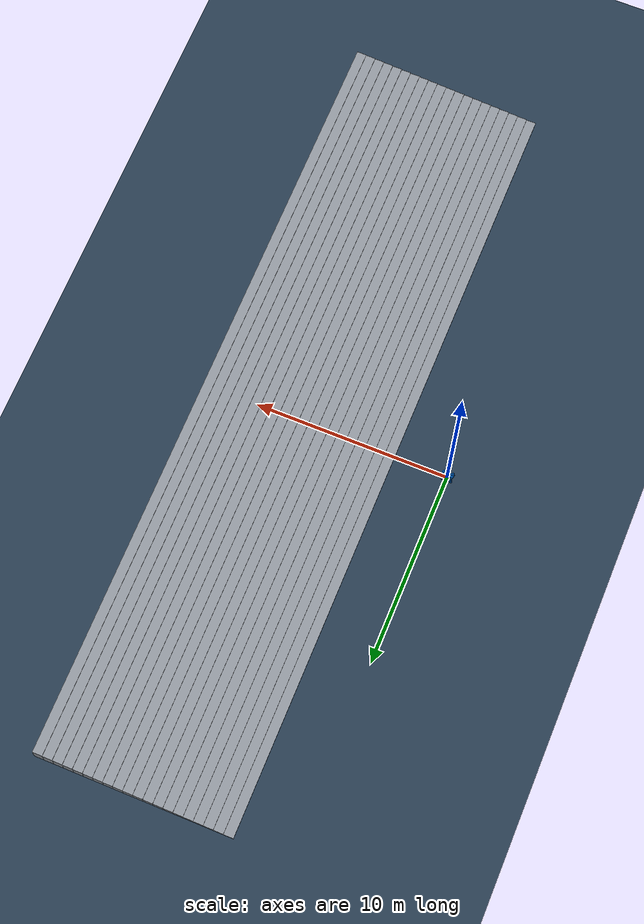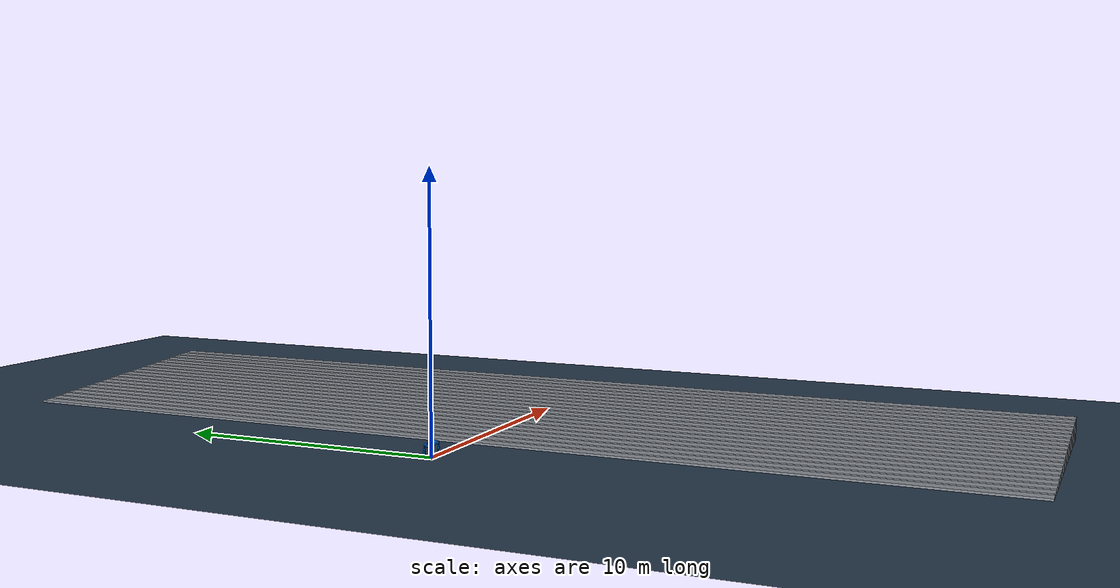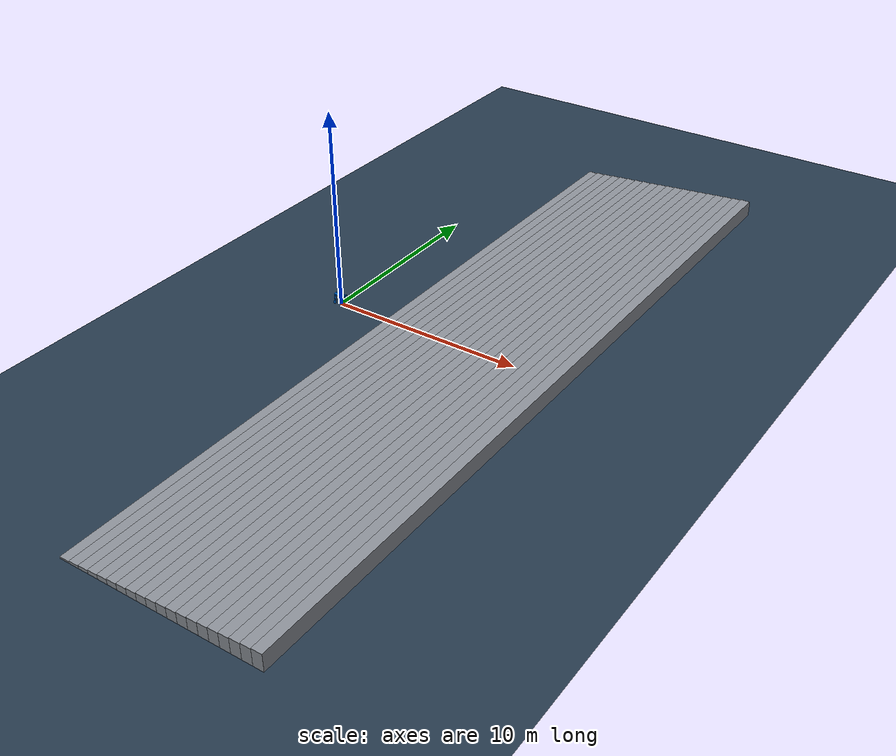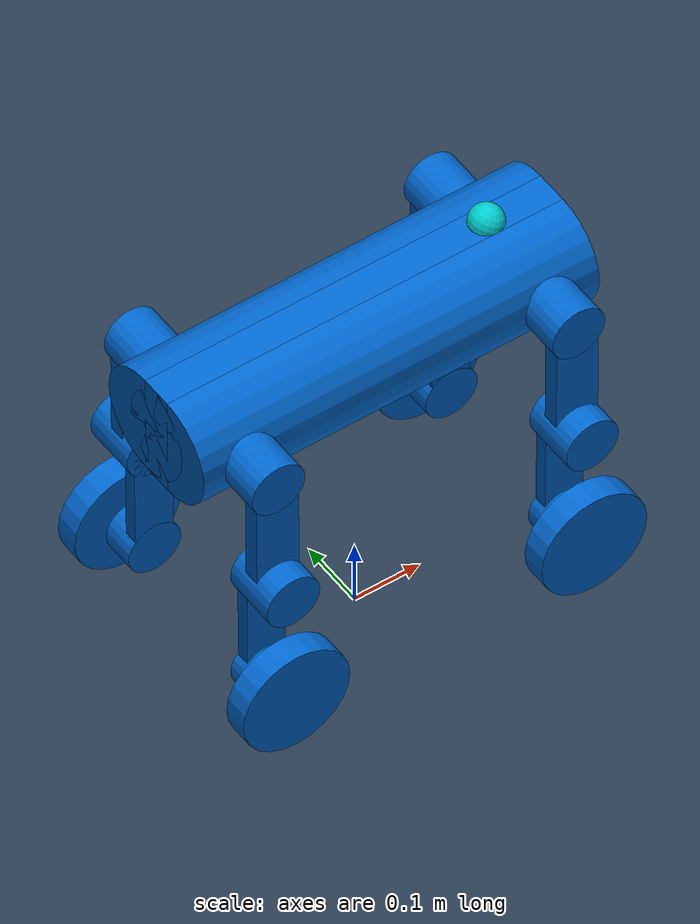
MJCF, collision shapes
<!-- 由 gen_box_scenes.py 生成，勿手改。box 几何，与评测场景同一种碰撞表示。 -->
<mujoco model="slope_8">
    <include file="./S10.xml"/>
    <worldbody>
        <geom name="r0" type="box" pos="3.0000 0.0000 -0.5800" size="0.2500 20.0000 0.6200" rgba="0.55 0.57 0.60 1" friction="1 0.01 0.001" condim="3"/>
        <geom name="r1" type="box" pos="3.5000 0.0000 -0.5600" size="0.2500 20.0000 0.6400" rgba="0.55 0.57 0.60 1" friction="1 0.01 0.001" condim="3"/>
        <geom name="r2" type="box" pos="4.0000 0.0000 -0.5400" size="0.2500 20.0000 0.6600" rgba="0.55 0.57 0.60 1" friction="1 0.01 0.001" condim="3"/>
        <geom name="r3" type="box" pos="4.5000 0.0000 -0.5200" size="0.2500 20.0000 0.6800" rgba="0.55 0.57 0.60 1" friction="1 0.01 0.001" condim="3"/>
        <geom name="r4" type="box" pos="5.0000 0.0000 -0.5000" size="0.2500 20.0000 0.7000" rgba="0.55 0.57 0.60 1" friction="1 0.01 0.001" condim="3"/>
        <geom name="r5" type="box" pos="5.5000 0.0000 -0.4800" size="0.2500 20.0000 0.7200" rgba="0.55 0.57 0.60 1" friction="1 0.01 0.001" condim="3"/>
        <geom name="r6" type="box" pos="6.0000 0.0000 -0.4600" size="0.2500 20.0000 0.7400" rgba="0.55 0.57 0.60 1" friction="1 0.01 0.001" condim="3"/>
        <geom name="r7" type="box" pos="6.5000 0.0000 -0.4400" size="0.2500 20.0000 0.7600" rgba="0.55 0.57 0.60 1" friction="1 0.01 0.001" condim="3"/>
        <geom name="r8" type="box" pos="7.0000 0.0000 -0.4200" size="0.2500 20.0000 0.7800" rgba="0.55 0.57 0.60 1" friction="1 0.01 0.001" condim="3"/>
        <geom name="r9" type="box" pos="7.5000 0.0000 -0.4000" size="0.2500 20.0000 0.8000" rgba="0.55 0.57 0.60 1" friction="1 0.01 0.001" condim="3"/>
        <geom name="r10" type="box" pos="8.0000 0.0000 -0.3800" size="0.2500 20.0000 0.8200" rgba="0.55 0.57 0.60 1" friction="1 0.01 0.001" condim="3"/>
        <geom name="r11" type="box" pos="8.5000 0.0000 -0.3600" size="0.2500 20.0000 0.8400" rgba="0.55 0.57 0.60 1" friction="1 0.01 0.001" condim="3"/>
        <geom name="r12" type="box" pos="9.0000 0.0000 -0.3400" size="0.2500 20.0000 0.8600" rgba="0.55 0.57 0.60 1" friction="1 0.01 0.001" condim="3"/>
        <geom name="r13" type="box" pos="9.5000 0.0000 -0.3200" size="0.2500 20.0000 0.8800" rgba="0.55 0.57 0.60 1" friction="1 0.01 0.001" condim="3"/>
        <geom name="r14" type="box" pos="10.0000 0.0000 -0.3000" size="0.2500 20.0000 0.9000" rgba="0.55 0.57 0.60 1" friction="1 0.01 0.001" condim="3"/>
        <geom name="r15" type="box" pos="10.5000 0.0000 -0.2800" size="0.2500 20.0000 0.9200" rgba="0.55 0.57 0.60 1" friction="1 0.01 0.001" condim="3"/>
        <geom name="r16" type="box" pos="11.0000 0.0000 -0.2600" size="0.2500 20.0000 0.9400" rgba="0.55 0.57 0.60 1" friction="1 0.01 0.001" condim="3"/>
        <geom name="r17" type="box" pos="11.5000 0.0000 -0.2400" size="0.2500 20.0000 0.9600" rgba="0.55 0.57 0.60 1" friction="1 0.01 0.001" condim="3"/>
        <geom name="r18" type="box" pos="12.0000 0.0000 -0.2200" size="0.2500 20.0000 0.9800" rgba="0.55 0.57 0.60 1" friction="1 0.01 0.001" condim="3"/>
        <geom name="r19" type="box" pos="12.5000 0.0000 -0.2000" size="0.2500 20.0000 1.0000" rgba="0.55 0.57 0.60 1" friction="1 0.01 0.001" condim="3"/>
    </worldbody>
</mujoco>

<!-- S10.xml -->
<mujoco model="S10">
  <default>
      <default class="robot">
          <default class="motor">
              <joint/>
              <motor/>
          </default>
          <default class="visual">
              <geom material="default_material" contype="0" conaffinity="0" group="2"/>
          </default>
          <default class="collision">
              <geom material="collision_material" condim="3" contype="1" conaffinity="1" solref="0.005 1"
                    friction="1 0.01 0.001" density="0" group="1"/>
          </default>
      </default>
  </default>

  <compiler angle="radian" meshdir="../meshes/"/>
  <compiler autolimits="true"/>

  <asset>
    <material name="default_material" rgba="0.7 0.7 0.7 1"/>
    <material name="collision_material" rgba="0.0 0.4 0.8 0.2"/>
    <mesh name="base_link" file="base_link.STL"/>
    <mesh name="fl_hipx" file="fl_hipx.STL"/>
    <mesh name="fl_hipy" file="fl_hipy.STL"/>
    <mesh name="fl_knee" file="fl_knee.STL"/>
    <mesh name="fl_wheel" file="fl_wheel.STL"/>
    <mesh name="fr_hipx" file="fr_hipx.STL"/>
    <mesh name="fr_hipy" file="fr_hipy.STL"/>
    <mesh name="fr_knee" file="fr_knee.STL"/>
    <mesh name="fr_wheel" file="fr_wheel.STL"/>
    <mesh name="hl_hipx" file="hl_hipx.STL"/>
    <mesh name="hl_hipy" file="hl_hipy.STL"/>
    <mesh name="hl_knee" file="hl_knee.STL"/>
    <mesh name="hl_wheel" file="hl_wheel.STL"/>
    <mesh name="hr_hipx" file="hr_hipx.STL"/>
    <mesh name="hr_hipy" file="hr_hipy.STL"/>
    <mesh name="hr_knee" file="hr_knee.STL"/>
    <mesh name="hr_wheel" file="hr_wheel.STL"/>
    <texture name="texplane" type="2d" builtin="checker" rgb1=".2 .3 .4" rgb2=".1 0.15 0.2"
              width="512" height="512"/>
    <material name='MatPlane' reflectance='0.3' texture="texplane" texrepeat="1 1" texuniform="true"/>
  </asset>

  <worldbody>
    <!-- 灯光 -->
    <light directional="true" pos="-0.5 0.5 3" dir="0 0 -1"/>
    <geom name='floor' pos='0 0 0' size='100 100 .125' type='plane' material="MatPlane" condim='3'
          friction="1 0.01 0.01" group="0"/>

    <body name="base_link" pos="0 0.0 0.5" quat="1 0 0 0" childclass="robot">
      <freejoint name="floating_base"/>
      <inertial pos="-0.000512 0.057317 0.001182"
                quat="1 0 0 0"
                mass="8.023087" diaginertia="0.115559 0.171329 0.262028"/>
        <site name="imu_site" pos="0.0075 -0.0373 0.0556" size="0.005" rgba="1 0 0 1"/>
        <site name="base_site" pos="0 0 0" quat="1 0 0 0"/>
        <body name="front_lidar_link" pos="0.2 0 0.08" euler="0 0.436332313 0">
          <site name="front_lidar_site" type="sphere" size="0.025" rgba="0 0.8 0.8 1"/>
        </body>
      <geom type="mesh" class="visual" mesh="base_link"/>
      <geom size="0.08 0.3" pos="0 0.024 0" quat="0.707107 0 0.707107 0" type="cylinder" class="collision"/>
      <geom size="0.08 0.3" pos="0 -0.024 0" quat="0.707107 0 0.707107 0" type="cylinder" class="collision"/>
      <geom size="0.08 0.024 0.3" quat="0.707107 0 0.707107 0" type="box" class="collision"/>
      <body name="fl_hipx" pos="0.2277 0.0574 0">
        <inertial pos="-0.005034 0.023524 4.6e-05" quat="0.25609 0.665262 -0.228203 0.663151" mass="0.627405" diaginertia="0.000415056 0.000391723 0.000223221"/>
        <joint name="fl_hipx_joint" pos="0 0 0" axis="-1 0 0" range="-0.6109 0.6109" actuatorfrcrange="-50 50"/>
        <geom type="mesh" class="visual" mesh="fl_hipx"/>
        <geom size="0.04 0.05" pos="0 0.054 0" quat="0.707107 0.707107 0 0" type="cylinder" class="collision"/>
        <body name="fl_hipy" pos="0 0.0779 0">
          <inertial pos="7.4e-05 0.018439 -0.129675" quat="0.701304 -0.0510428 0.0516391 0.709155" mass="0.885874" diaginertia="0.00454086 0.00445199 0.00030515"/>
          <joint name="fl_hipy_joint" pos="0 0 0" axis="0 -1 0" range="-2.5307 2.5307" actuatorfrcrange="-50 50"/>
          <geom type="mesh" class="visual" mesh="fl_hipy"/>
          <geom size="0.032 0.012 0.09" pos="0 0.012 -0.09" type="box" class="collision"/>
          <geom size="0.04 0.04" pos="0 0.018 -0.18" quat="0.707107 0.707107 0 0" type="cylinder" class="collision"/>
          <body name="fl_knee" pos="0 0 -0.18">
            <inertial pos="-3.2e-05 0.013504 -0.156308" quat="0.703786 -0.068447 0.068447 0.703786" mass="0.640283" diaginertia="0.0022296 0.002221 0.000193398"/>
            <joint name="fl_knee_joint" pos="0 0 0" axis="0 -1 0" range="-2.7227 2.7227" actuatorfrcrange="-50 50"/>
            <geom type="mesh" class="visual" mesh="fl_knee"/>
            <geom size="0.029 0.01 0.09" pos="0 -0.012 -0.09" type="box" class="collision"/>
            <geom size="0.04 0.025" pos="0 0.002 -0.18" quat="0.707107 0.707107 0 0" type="cylinder" class="collision"/>
            <body name="fl_wheel" pos="0 0.045891 -0.18">
              <inertial pos="-8e-06 0.001694 -5e-06" quat="0.707107 0 0 0.707107" mass="0.587952" diaginertia="0.002003 0.001059 0.001059"/>
              <joint name="fl_wheel_joint" pos="0 0 0" axis="0 -1 0" actuatorfrcrange="-14 14"/>
              <geom type="mesh" class="visual" mesh="fl_wheel"/>
              <geom size="0.081 0.0185" quat="0.707107 0.707107 0 0" type="cylinder" class="collision"/>
            </body>
          </body>
        </body>
      </body>
      <body name="fr_hipx" pos="0.2277 -0.0574 0">
        <inertial pos="-0.004831 -0.02349 0.000169" quat="-0.278522 0.675499 0.205833 0.650968" mass="0.626546" diaginertia="0.000415238 0.000395047 0.000218715"/>
        <joint name="fr_hipx_joint" pos="0 0 0" axis="-1 0 0" range="-0.6109 0.6109" actuatorfrcrange="-50 50"/>
        <geom type="mesh" class="visual" mesh="fr_hipx"/>
        <geom size="0.04 0.05" pos="0 -0.054 0" quat="0.707107 0.707107 0 0" type="cylinder" class="collision"/>
        <body name="fr_hipy" pos="0 -0.0779 0">
          <inertial pos="-7.4e-05 -0.018439 -0.129675" quat="0.701304 0.0510428 -0.0516391 0.709155" mass="0.885874" diaginertia="0.00454086 0.00445199 0.00030515"/>
          <joint name="fr_hipy_joint" pos="0 0 0" axis="0 -1 0" range="-2.5307 2.5307" actuatorfrcrange="-50 50"/>
          <geom type="mesh" class="visual" mesh="fr_hipy"/>
          <geom size="0.032 0.012 0.09" pos="0 -0.012 -0.09" type="box" class="collision"/>
          <geom size="0.04 0.04" pos="0 -0.018 -0.18" quat="0.707107 0.707107 0 0" type="cylinder" class="collision"/>
          <body name="fr_knee" pos="0 0 -0.18">
            <inertial pos="3.2e-05 -0.013504 -0.156308" quat="0.703786 0.068447 -0.068447 0.703786" mass="0.640283" diaginertia="0.0022296 0.002221 0.000193398"/>
            <joint name="fr_knee_joint" pos="0 0 0" axis="0 -1 0" range="-2.7227 2.7227" actuatorfrcrange="-50 50"/>
            <geom type="mesh" class="visual" mesh="fr_knee"/>
            <geom size="0.029 0.01 0.09" pos="0 0.012 -0.09" type="box" class="collision"/>
            <geom size="0.04 0.025" pos="0 -0.002 -0.18" quat="0.707107 0.707107 0 0" type="cylinder" class="collision"/>
            <body name="fr_wheel" pos="0 -0.045891 -0.18">
              <inertial pos="8e-06 -0.001694 5e-06" quat="0.707107 0 0 0.707107" mass="0.587952" diaginertia="0.002003 0.001059 0.001059"/>
              <joint name="fr_wheel_joint" pos="0 0 0" axis="0 -1 0" actuatorfrcrange="-14 14"/>
              <geom type="mesh" class="visual" mesh="fr_wheel"/>
              <geom size="0.081 0.0185" quat="0.707107 0.707107 0 0" type="cylinder" class="collision"/>
            </body>
          </body>
        </body>
      </body>
      <body name="hl_hipx" pos="-0.2277 0.0574 0">
        <inertial pos="0.004831 0.02349 0.000169" quat="-0.205833 0.650968 0.278522 0.675499" mass="0.626546" diaginertia="0.000415238 0.000395047 0.000218715"/>
        <joint name="hl_hipx_joint" pos="0 0 0" axis="-1 0 0" range="-0.6109 0.6109" actuatorfrcrange="-50 50"/>
        <geom type="mesh" class="visual" mesh="hl_hipx"/>
        <geom size="0.04 0.05" pos="0 0.054 0" quat="0.707107 0.707107 0 0" type="cylinder" class="collision"/>
        <body name="hl_hipy" pos="0 0.0779 0">
          <inertial pos="7.4e-05 0.018439 -0.129675" quat="0.701304 -0.0510428 0.0516391 0.709155" mass="0.885874" diaginertia="0.00454086 0.00445199 0.00030515"/>
          <joint name="hl_hipy_joint" pos="0 0 0" axis="0 -1 0" range="-2.5307 2.5307" actuatorfrcrange="-50 50"/>
          <geom type="mesh" class="visual" mesh="hl_hipy"/>
          <geom size="0.032 0.012 0.09" pos="0 0.012 -0.09" type="box" class="collision"/>
          <geom size="0.04 0.04" pos="0 0.018 -0.18" quat="0.707107 0.707107 0 0" type="cylinder" class="collision"/>
          <body name="hl_knee" pos="0 0 -0.18">
            <inertial pos="-3.2e-05 0.013504 -0.156308" quat="0.703786 -0.068447 0.068447 0.703786" mass="0.640283" diaginertia="0.0022296 0.002221 0.000193398"/>
            <joint name="hl_knee_joint" pos="0 0 0" axis="0 -1 0" range="-2.7227 2.7227" actuatorfrcrange="-50 50"/>
            <geom type="mesh" class="visual" mesh="hl_knee"/>
            <geom size="0.029 0.01 0.09" pos="0 -0.012 -0.09" type="box" class="collision"/>
            <geom size="0.04 0.025" pos="0 0.002 -0.18" quat="0.707107 0.707107 0 0" type="cylinder" class="collision"/>
            <body name="hl_wheel" pos="0 0.054891 -0.18">
              <inertial pos="-8e-06 0.001694 -5e-06" quat="0.707107 0 0 0.707107" mass="0.587952" diaginertia="0.002003 0.001059 0.001059"/>
              <joint name="hl_wheel_joint" pos="0 0 0" axis="0 -1 0" actuatorfrcrange="-14 14"/>
              <geom type="mesh" class="visual" mesh="hl_wheel"/>
              <geom size="0.081 0.0185" quat="0.707107 0.707107 0 0" type="cylinder" class="collision"/>
            </body>
          </body>
        </body>
      </body>
      <body name="hr_hipx" pos="-0.2277 -0.0574 0">
        <inertial pos="0.005034 -0.023524 4.6e-05" quat="0.228203 0.663151 -0.25609 0.665262" mass="0.627405" diaginertia="0.000415056 0.000391723 0.000223221"/>
        <joint name="hr_hipx_joint" pos="0 0 0" axis="-1 0 0" range="-0.6109 0.6109" actuatorfrcrange="-50 50"/>
        <geom type="mesh" class="visual" mesh="hr_hipx"/>
        <geom size="0.04 0.05" pos="0 -0.054 0" quat="0.707107 0.707107 0 0" type="cylinder" class="collision"/>
        <body name="hr_hipy" pos="0 -0.0779 0">
          <inertial pos="-7.4e-05 -0.018439 -0.129675" quat="0.701304 0.0510428 -0.0516391 0.709155" mass="0.885874" diaginertia="0.00454086 0.00445199 0.00030515"/>
          <joint name="hr_hipy_joint" pos="0 0 0" axis="0 -1 0" range="-2.5307 2.5307" actuatorfrcrange="-50 50"/>
          <geom type="mesh" class="visual" mesh="hr_hipy"/>
          <geom size="0.032 0.012 0.09" pos="0 -0.012 -0.09" type="box" class="collision"/>
          <geom size="0.04 0.04" pos="0 -0.018 -0.18" quat="0.707107 0.707107 0 0" type="cylinder" class="collision"/>
          <body name="hr_knee" pos="0 0 -0.18">
            <inertial pos="3.2e-05 -0.013504 -0.156308" quat="0.703786 0.068447 -0.068447 0.703786" mass="0.640283" diaginertia="0.0022296 0.002221 0.000193398"/>
            <joint name="hr_knee_joint" pos="0 0 0" axis="0 -1 0" range="-2.7227 2.7227" actuatorfrcrange="-50 50"/>
            <geom type="mesh" class="visual" mesh="hr_knee"/>
            <geom size="0.029 0.01 0.09" pos="0 0.012 -0.09" type="box" class="collision"/>
            <geom size="0.04 0.025" pos="0 -0.002 -0.18" quat="0.707107 0.707107 0 0" type="cylinder" class="collision"/>
            <body name="hr_wheel" pos="0 -0.045891 -0.18">
              <inertial pos="8e-06 -0.001694 5e-06" quat="0.707107 0 0 0.707107" mass="0.587952" diaginertia="0.002003 0.001059 0.001059"/>
              <joint name="hr_wheel_joint" pos="0 0 0" axis="0 -1 0" actuatorfrcrange="-14 14"/>
              <geom type="mesh" class="visual" mesh="hr_wheel"/>
              <geom size="0.081 0.0185" quat="0.707107 0.707107 0 0" type="cylinder" class="collision"/>
            </body>
          </body>
        </body>
      </body>
    </body>
  </worldbody>

    <actuator>
        <motor name="fl_hipx_joint" joint="fl_hipx_joint" ctrllimited="true" ctrlrange="-50.00 50.00" gear="1"/>
        <motor name="fl_hipy_joint" joint="fl_hipy_joint" ctrllimited="true" ctrlrange="-50.00 50.00" gear="1"/>
        <motor name="fl_knee_joint" joint="fl_knee_joint" ctrllimited="true" ctrlrange="-50.00 50.00" gear="1"/>
        <motor name="fl_wheel_joint" joint="fl_wheel_joint" ctrllimited="true" ctrlrange="-14.00 14.00" gear="1"/>
        <motor name="fr_hipx_joint" joint="fr_hipx_joint" ctrllimited="true" ctrlrange="-50.00 50.00" gear="1"/>
        <motor name="fr_hipy_joint" joint="fr_hipy_joint" ctrllimited="true" ctrlrange="-50.00 50.00" gear="1"/>
        <motor name="fr_knee_joint" joint="fr_knee_joint" ctrllimited="true" ctrlrange="-50.00 50.00" gear="1"/>
        <motor name="fr_wheel_joint" joint="fr_wheel_joint" ctrllimited="true" ctrlrange="-14.00 14.00" gear="1"/>
        <motor name="hl_hipx_joint" joint="hl_hipx_joint" ctrllimited="true" ctrlrange="-50.00 50.00" gear="1"/>
        <motor name="hl_hipy_joint" joint="hl_hipy_joint" ctrllimited="true" ctrlrange="-50.00 50.00" gear="1"/>
        <motor name="hl_knee_joint" joint="hl_knee_joint" ctrllimited="true" ctrlrange="-50.00 50.00" gear="1"/>
        <motor name="hl_wheel_joint" joint="hl_wheel_joint" ctrllimited="true" ctrlrange="-14.00 14.00" gear="1"/>
        <motor name="hr_hipx_joint" joint="hr_hipx_joint" ctrllimited="true" ctrlrange="-50.00 50.00" gear="1"/>
        <motor name="hr_hipy_joint" joint="hr_hipy_joint" ctrllimited="true" ctrlrange="-50.00 50.00" gear="1"/>
        <motor name="hr_knee_joint" joint="hr_knee_joint" ctrllimited="true" ctrlrange="-50.00 50.00" gear="1"/>
        <motor name="hr_wheel_joint" joint="hr_wheel_joint" ctrllimited="true" ctrlrange="-14.00 14.00" gear="1"/>
    </actuator>

    <contact>
        <exclude body1="base_link" body2="fl_hipx"/>
        <exclude body1="fl_hipx" body2="fl_hipy"/>
        <exclude body1="fl_hipy" body2="fl_knee"/>
        <exclude body1="fl_knee" body2="fl_wheel"/>

        <exclude body1="base_link" body2="fr_hipx"/>
        <exclude body1="fr_hipx" body2="fr_hipy"/>
        <exclude body1="fr_hipy" body2="fr_knee"/>
        <exclude body1="fr_knee" body2="fr_wheel"/>

        <exclude body1="base_link" body2="hl_hipx"/>
        <exclude body1="hl_hipx" body2="hl_hipy"/>
        <exclude body1="hl_hipy" body2="hl_knee"/>
        <exclude body1="hl_knee" body2="hl_wheel"/>

        <exclude body1="base_link" body2="hr_hipx"/>
        <exclude body1="hr_hipx" body2="hr_hipy"/>
        <exclude body1="hr_hipy" body2="hr_knee"/>
        <exclude body1="hr_knee" body2="hr_wheel"/>

    </contact>

    <sensor>
        <framequat name="base_quat" objtype="site" objname="base_site"/>
        <accelerometer site="imu_site"/>
        <gyro site="imu_site"/>
    </sensor>
</mujoco>
